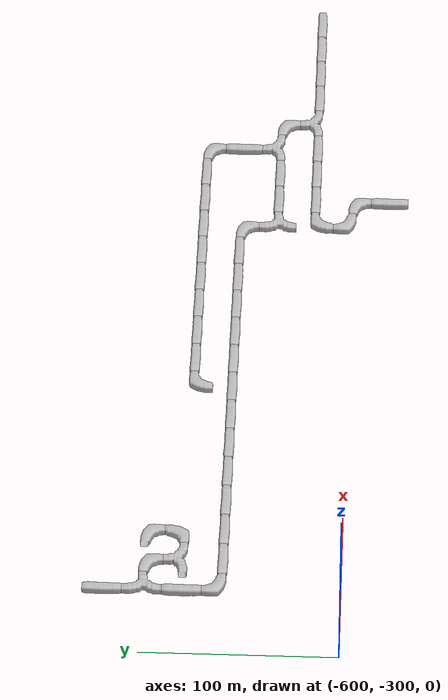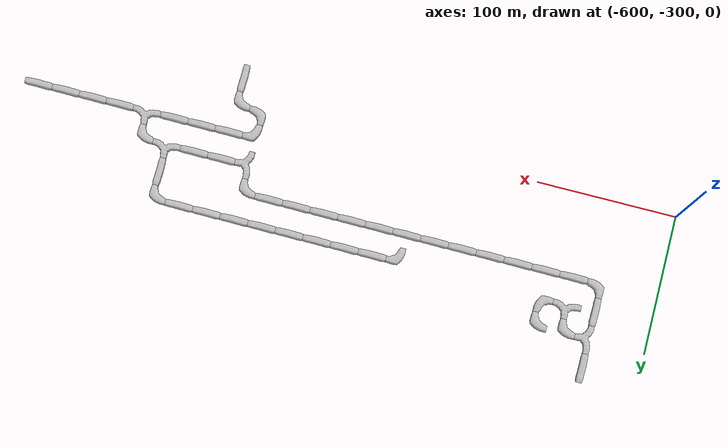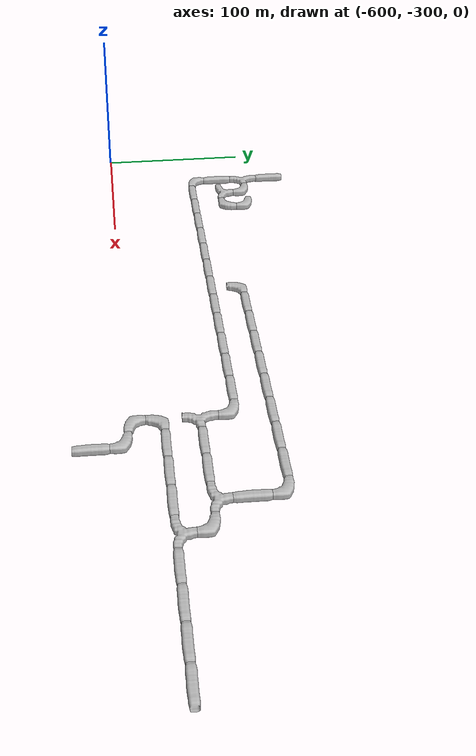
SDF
<sdf version="1.6">
 <world name="cave_8000_8">
  <include>
   <static>true</static>
   <name>cave_-7_-14</name>
   <pose>-140 -280 0 0 0 1.5707963267948966</pose>
   <uri>model://cave_straight_20m</uri>
  </include>
  <include>
   <static>true</static>
   <name>cave_-8_-14</name>
   <pose>-160 -280 0 0 0 1.5707963267948966</pose>
   <uri>model://cave_straight_20m</uri>
  </include>
  <include>
   <static>true</static>
   <name>cave_-9_-14</name>
   <pose>-180 -280 0 0 0 1.5707963267948966</pose>
   <uri>model://cave_straight_20m</uri>
  </include>
  <include>
   <static>true</static>
   <name>cave_-10_-14</name>
   <pose>-200 -280 0 0 0 1.5707963267948966</pose>
   <uri>model://cave_straight_20m</uri>
  </include>
  <include>
   <static>true</static>
   <name>cave_-11_-14</name>
   <pose>-220 -280 0 0 0 0.0</pose>
   <uri>model://cave_3way_20m</uri>
  </include>
  <include>
   <static>true</static>
   <name>cave_-12_-14</name>
   <pose>-240 -280 0 0 0 1.5707963267948966</pose>
   <uri>model://cave_straight_20m</uri>
  </include>
  <include>
   <static>true</static>
   <name>cave_-13_-14</name>
   <pose>-260 -280 0 0 0 1.5707963267948966</pose>
   <uri>model://cave_straight_20m</uri>
  </include>
  <include>
   <static>true</static>
   <name>cave_-14_-14</name>
   <pose>-280 -280 0 0 0 1.5707963267948966</pose>
   <uri>model://cave_straight_20m</uri>
  </include>
  <include>
   <static>true</static>
   <name>cave_-15_-14</name>
   <pose>-300 -280 0 0 0 -1.5707963267948966</pose>
   <uri>model://cave_L_20m</uri>
  </include>
  <include>
   <static>true</static>
   <name>cave_-15_-15</name>
   <pose>-300 -300 0 0 0 0.0</pose>
   <uri>model://cave_L_20m</uri>
  </include>
  <include>
   <static>true</static>
   <name>cave_-14_-15</name>
   <pose>-280 -300 0 0 0 3.141592653589793</pose>
   <uri>model://cave_L_20m</uri>
  </include>
  <include>
   <static>true</static>
   <name>cave_-14_-16</name>
   <pose>-280 -320 0 0 0 0.0</pose>
   <uri>model://cave_straight_20m</uri>
  </include>
  <include>
   <static>true</static>
   <name>cave_-11_-13</name>
   <pose>-220 -260 0 0 0 3.141592653589793</pose>
   <uri>model://cave_L_20m</uri>
  </include>
  <include>
   <static>true</static>
   <name>cave_-12_-13</name>
   <pose>-240 -260 0 0 0 0.0</pose>
   <uri>model://cave_3way_20m</uri>
  </include>
  <include>
   <static>true</static>
   <name>cave_-13_-13</name>
   <pose>-260 -260 0 0 0 1.5707963267948966</pose>
   <uri>model://cave_straight_20m</uri>
  </include>
  <include>
   <static>true</static>
   <name>cave_-14_-13</name>
   <pose>-280 -260 0 0 0 1.5707963267948966</pose>
   <uri>model://cave_straight_20m</uri>
  </include>
  <include>
   <static>true</static>
   <name>cave_-15_-13</name>
   <pose>-300 -260 0 0 0 -1.5707963267948966</pose>
   <uri>model://cave_3way_20m</uri>
  </include>
  <include>
   <static>true</static>
   <name>cave_-15_-12</name>
   <pose>-300 -240 0 0 0 3.141592653589793</pose>
   <uri>model://cave_L_20m</uri>
  </include>
  <include>
   <static>true</static>
   <name>cave_-16_-12</name>
   <pose>-320 -240 0 0 0 1.5707963267948966</pose>
   <uri>model://cave_straight_20m</uri>
  </include>
  <include>
   <static>true</static>
   <name>cave_-17_-12</name>
   <pose>-340 -240 0 0 0 1.5707963267948966</pose>
   <uri>model://cave_straight_20m</uri>
  </include>
  <include>
   <static>true</static>
   <name>cave_-18_-12</name>
   <pose>-360 -240 0 0 0 1.5707963267948966</pose>
   <uri>model://cave_straight_20m</uri>
  </include>
  <include>
   <static>true</static>
   <name>cave_-19_-12</name>
   <pose>-380 -240 0 0 0 1.5707963267948966</pose>
   <uri>model://cave_straight_20m</uri>
  </include>
  <include>
   <static>true</static>
   <name>cave_-20_-12</name>
   <pose>-400 -240 0 0 0 1.5707963267948966</pose>
   <uri>model://cave_straight_20m</uri>
  </include>
  <include>
   <static>true</static>
   <name>cave_-21_-12</name>
   <pose>-420 -240 0 0 0 1.5707963267948966</pose>
   <uri>model://cave_straight_20m</uri>
  </include>
  <include>
   <static>true</static>
   <name>cave_-22_-12</name>
   <pose>-440 -240 0 0 0 1.5707963267948966</pose>
   <uri>model://cave_straight_20m</uri>
  </include>
  <include>
   <static>true</static>
   <name>cave_-23_-12</name>
   <pose>-460 -240 0 0 0 1.5707963267948966</pose>
   <uri>model://cave_straight_20m</uri>
  </include>
  <include>
   <static>true</static>
   <name>cave_-24_-12</name>
   <pose>-480 -240 0 0 0 1.5707963267948966</pose>
   <uri>model://cave_straight_20m</uri>
  </include>
  <include>
   <static>true</static>
   <name>cave_-25_-12</name>
   <pose>-500 -240 0 0 0 1.5707963267948966</pose>
   <uri>model://cave_straight_20m</uri>
  </include>
  <include>
   <static>true</static>
   <name>cave_-26_-12</name>
   <pose>-520 -240 0 0 0 1.5707963267948966</pose>
   <uri>model://cave_straight_20m</uri>
  </include>
  <include>
   <static>true</static>
   <name>cave_-27_-12</name>
   <pose>-540 -240 0 0 0 1.5707963267948966</pose>
   <uri>model://cave_straight_20m</uri>
  </include>
  <include>
   <static>true</static>
   <name>cave_-28_-12</name>
   <pose>-560 -240 0 0 0 0.0</pose>
   <uri>model://cave_L_20m</uri>
  </include>
  <include>
   <static>true</static>
   <name>cave_-28_-11</name>
   <pose>-560 -220 0 0 0 0.0</pose>
   <uri>model://cave_straight_20m</uri>
  </include>
  <include>
   <static>true</static>
   <name>cave_-28_-10</name>
   <pose>-560 -200 0 0 0 -1.5707963267948966</pose>
   <uri>model://cave_3way_20m</uri>
  </include>
  <include>
   <static>true</static>
   <name>cave_-27_-10</name>
   <pose>-540 -200 0 0 0 3.141592653589793</pose>
   <uri>model://cave_L_20m</uri>
  </include>
  <include>
   <static>true</static>
   <name>cave_-27_-11</name>
   <pose>-540 -220 0 0 0 0.0</pose>
   <uri>model://cave_3way_20m</uri>
  </include>
  <include>
   <static>true</static>
   <name>cave_-26_-11</name>
   <pose>-520 -220 0 0 0 1.5707963267948966</pose>
   <uri>model://cave_L_20m</uri>
  </include>
  <include>
   <static>true</static>
   <name>cave_-26_-10</name>
   <pose>-520 -200 0 0 0 3.141592653589793</pose>
   <uri>model://cave_L_20m</uri>
  </include>
  <include>
   <static>true</static>
   <name>cave_-28_-9</name>
   <pose>-560 -180 0 0 0 0.0</pose>
   <uri>model://cave_straight_20m</uri>
  </include>
  <include>
   <static>true</static>
   <name>cave_-12_-12</name>
   <pose>-240 -240 0 0 0 0.0</pose>
   <uri>model://cave_straight_20m</uri>
  </include>
  <include>
   <static>true</static>
   <name>cave_-12_-11</name>
   <pose>-240 -220 0 0 0 3.141592653589793</pose>
   <uri>model://cave_L_20m</uri>
  </include>
  <include>
   <static>true</static>
   <name>cave_-13_-11</name>
   <pose>-260 -220 0 0 0 1.5707963267948966</pose>
   <uri>model://cave_straight_20m</uri>
  </include>
  <include>
   <static>true</static>
   <name>cave_-14_-11</name>
   <pose>-280 -220 0 0 0 1.5707963267948966</pose>
   <uri>model://cave_straight_20m</uri>
  </include>
  <include>
   <static>true</static>
   <name>cave_-15_-11</name>
   <pose>-300 -220 0 0 0 1.5707963267948966</pose>
   <uri>model://cave_straight_20m</uri>
  </include>
  <include>
   <static>true</static>
   <name>cave_-16_-11</name>
   <pose>-320 -220 0 0 0 1.5707963267948966</pose>
   <uri>model://cave_straight_20m</uri>
  </include>
  <include>
   <static>true</static>
   <name>cave_-17_-11</name>
   <pose>-340 -220 0 0 0 1.5707963267948966</pose>
   <uri>model://cave_straight_20m</uri>
  </include>
  <include>
   <static>true</static>
   <name>cave_-18_-11</name>
   <pose>-360 -220 0 0 0 1.5707963267948966</pose>
   <uri>model://cave_straight_20m</uri>
  </include>
  <include>
   <static>true</static>
   <name>cave_-19_-11</name>
   <pose>-380 -220 0 0 0 1.5707963267948966</pose>
   <uri>model://cave_straight_20m</uri>
  </include>
  <include>
   <static>true</static>
   <name>cave_-20_-11</name>
   <pose>-400 -220 0 0 0 1.5707963267948966</pose>
   <uri>model://cave_straight_20m</uri>
  </include>
  <include>
   <static>true</static>
   <name>cave_-21_-11</name>
   <pose>-420 -220 0 0 0 -1.5707963267948966</pose>
   <uri>model://cave_L_20m</uri>
  </include>
 </world>
</sdf>
